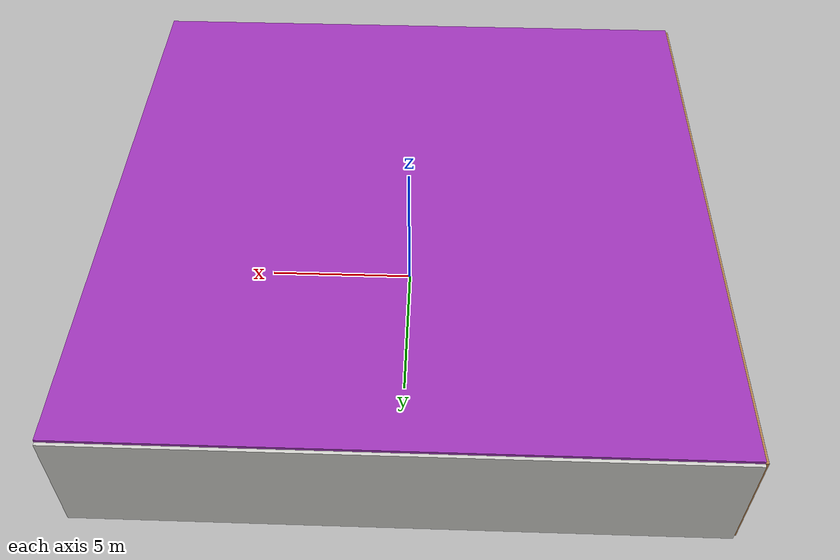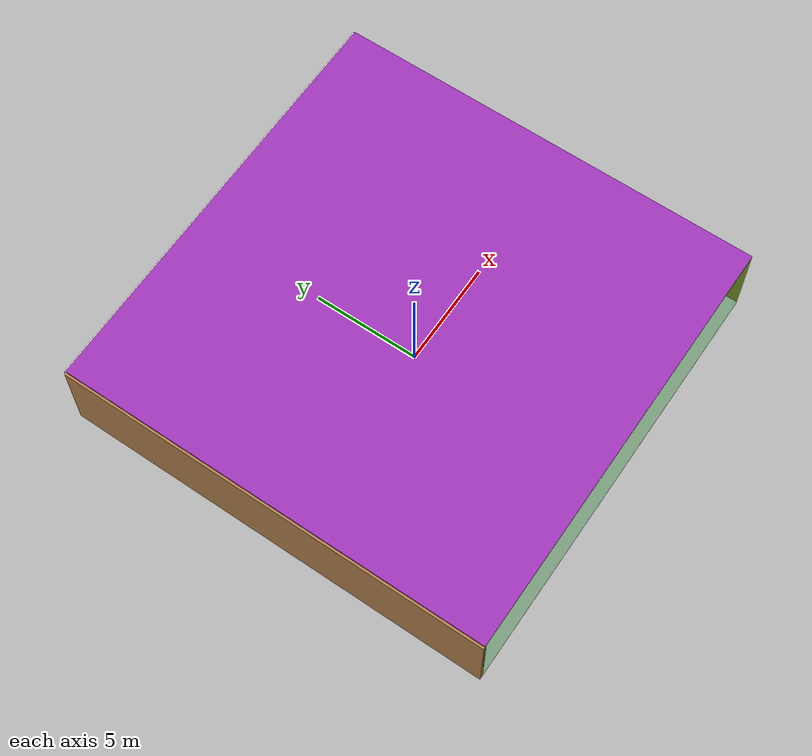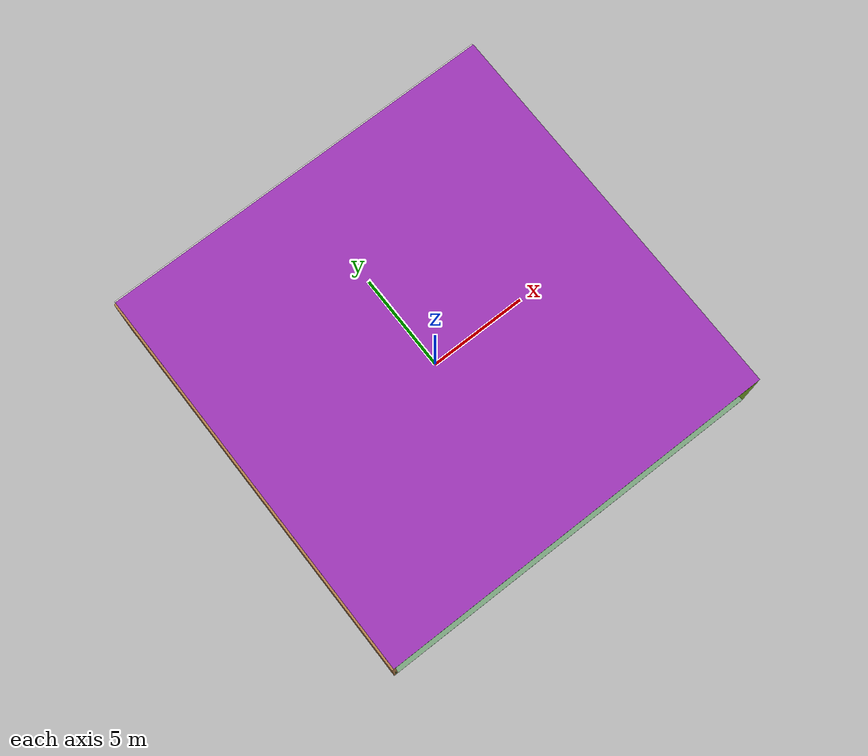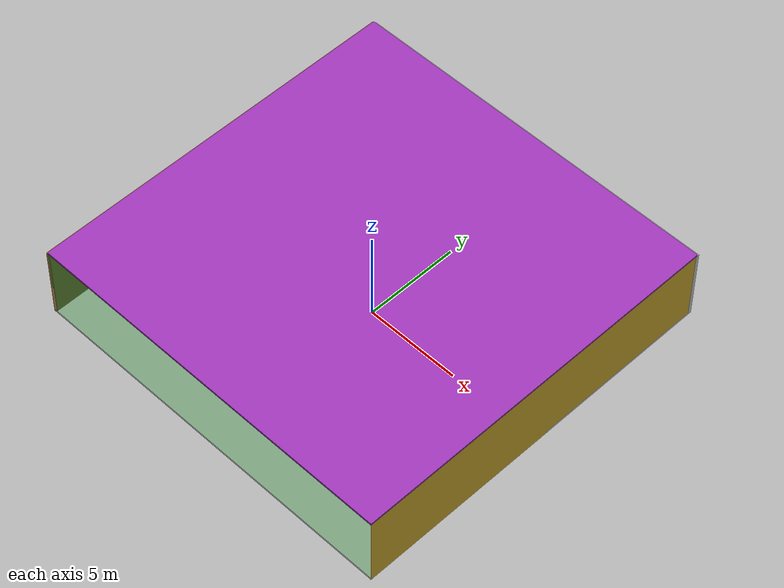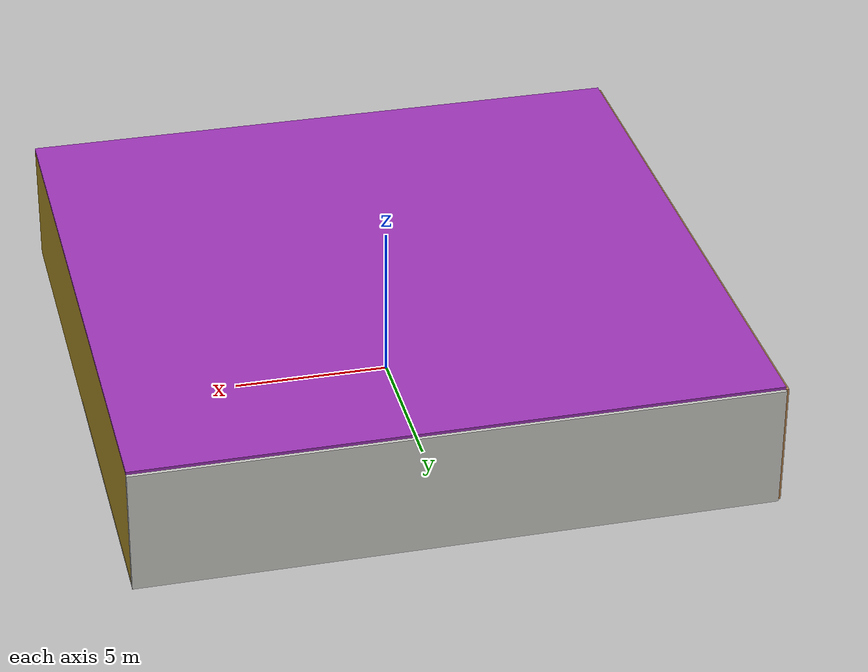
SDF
<sdf version="1.4">
 <world name="default">
  <physics type="ode">
   <max_step_size>0.001</max_step_size>
   <real_time_factor>1</real_time_factor>
   <real_time_update_rate>1000</real_time_update_rate>
   <gravity>0 0 -9.8</gravity>
  </physics>
  <scene><ambient>0.4 0.4 0.4 1</ambient><background>0.7 0.7 0.7 1</background><shadows>1</shadows></scene>
  <model name="Surrounding">
   <static>1</static>
   <link name="Ceiling">
    <collision name="Ceiling_Collision"><geometry><box><size>20 20 0.1</size></box></geometry></collision>
    <visual name="Ceiling_Visual">
     <geometry><box><size>20 20 0.1</size></box></geometry>
     <material>
      <script><uri>file://media/materials/scripts/gazebo.material</uri><name>Gazebo/Purple</name></script>
     </material>
    </visual>
    <pose>0 0 4.05 0 0 0</pose>
   </link>
   <link name="Wall_South">
    <collision name="Wall_South_Collision">
     <geometry><box><size>20 0 4</size></box></geometry>
     <pose>0 0 2 0 -0 0</pose>
    </collision>
    <visual name="Wall_South_Visual">
     <pose>0 0 2 0 -0 0</pose>
     <geometry><box><size>20 0 4</size></box></geometry>
     <material>
      <script><uri>file://media/materials/scripts/gazebo.material</uri><name>Gazebo/GreenTransparent</name></script>
     </material>
    </visual>
    <velocity_decay><linear>0</linear><angular>0</angular></velocity_decay>
    <pose>0 -10 0 0 -0 0</pose>
   </link>
   <link name="Wall_East">
    <collision name="Wall_21_Collision">
     <geometry><box><size>20 0 4</size></box></geometry>
     <pose>0 0 2 0 -0 0</pose>
    </collision>
    <visual name="Wall_21_Visual">
     <pose>0 0 2 0 -0 0</pose>
     <geometry><box><size>20 0 4</size></box></geometry>
     <material>
      <script><uri>file://media/materials/scripts/gazebo.material</uri><name>Gazebo/Gold</name></script>
     </material>
    </visual>
    <velocity_decay><linear>0</linear><angular>0</angular></velocity_decay>
    <pose>10 0 0 0 -0 1.5708</pose>
   </link>
   <link name="Wall_North">
    <collision name="Wall_22_Collision">
     <geometry><box><size>20 0.2 4</size></box></geometry>
     <pose>0 0 2 0 -0 0</pose>
    </collision>
    <visual name="Wall_22_Visual">
     <pose>0 0 2 0 -0 0</pose>
     <geometry><box><size>20 0.2 4</size></box></geometry>
     <material>
      <script><uri>file://media/materials/scripts/gazebo.material</uri><name>Gazebo/CeilingTiled</name></script>
     </material>
    </visual>
    <velocity_decay><linear>0</linear><angular>0</angular></velocity_decay>
    <pose>0 10 0 0 -0 0</pose>
   </link>
   <link name="Wall_West">
    <collision name="Wall_23_Collision">
     <geometry><box><size>20 0.2 4</size></box></geometry>
     <pose>0 0 2 0 -0 0</pose>
    </collision>
    <visual name="Wall_23_Visual">
     <pose>0 0 2 0 -0 0</pose>
     <geometry><box><size>20 0.2 4</size></box></geometry>
     <material>
      <script><uri>file://media/materials/scripts/gazebo.material</uri><name>Gazebo/Wood</name></script>
     </material>
    </visual>
    <velocity_decay><linear>0</linear><angular>0</angular></velocity_decay>
    <pose>-10 0 0 0 0 -1.5708</pose>
   </link>
   <link name="Ground_link">
    <collision name="collision">
     <pose>0 0 .05 0 -0 0</pose>
     <geometry><box><size>20 20 0.1</size></box></geometry>
    </collision>
    <visual name="visual">
     <pose>0 0 .05 0 -0 0</pose>
     <geometry><box><size>20 20 0.1</size></box></geometry>
     <material>
      <script><uri>file://media/materials/scripts/gazebo.material</uri><name>Gazebo/WhiteGlow</name></script>
     </material>
    </visual>
   </link>
   <static>1</static>
  </model>
  <spherical_coordinates>
   <surface_model>EARTH_WGS84</surface_model>
   <latitude_deg>0</latitude_deg>
   <longitude_deg>0</longitude_deg>
   <elevation>0</elevation>
   <heading_deg>0</heading_deg>
  </spherical_coordinates>
  <light name="lightball_0" type="diffuse">
   <diffuse>0.8 0.8 0.8 1</diffuse>
   <specular>0.2 0.2 0.2 1</specular>
   <attenuation>
    <range>100</range>
    <constant>0.7</constant>
    <linear>0.01</linear>
    <quadratic>0.001</quadratic>
   </attenuation>
   <direction>-0.5 0.1 -0.9</direction>
   <pose>2.41184783599 0.992892576916 3.6643544576 0 0 0</pose>
  </light>
  <light name="lightball_1" type="diffuse">
   <diffuse>0.8 0.8 0.8 1</diffuse>
   <specular>0.2 0.2 0.2 1</specular>
   <attenuation>
    <range>100</range>
    <constant>0.7</constant>
    <linear>0.01</linear>
    <quadratic>0.001</quadratic>
   </attenuation>
   <direction>-0.5 0.1 -0.9</direction>
   <pose>0.465027240692 -4.60564965573 2.37099916051 0 0 0</pose>
  </light>
  <include>
   <uri>model://robocup_3Dsim_goal</uri>
   <pose>-7.85961042399 -1.76922368162 0 0 0 2.58531971807</pose>
  </include>
  <include>
   <uri>model://robocup_3Dsim_goal</uri>
   <pose>-8.47212353109 4.95232477367 0 0 0 2.68545666095</pose>
  </include>
  <include>
   <uri>model://textured_shapes</uri>
   <pose>-2.42832670958 6.67105766176 0 0 0 0.467983516217</pose>
  </include>
  <include>
   <uri>model://robocup_3Dsim_goal</uri>
   <pose>8.32881849007 -2.17315282043 0 0 0 1.96539299988</pose>
  </include>
 </world>
</sdf>

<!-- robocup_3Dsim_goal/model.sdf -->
<sdf version="1.5">
  <model name="robocup_3d_goal">
    <static>true</static>
    <link name="left_post">
      <pose>0 1.05 0.45 0 0 0</pose>
      <collision name="collision">
        <geometry>
          <cylinder>
            <radius>0.05</radius>
            <length>0.9</length>
          </cylinder>
        </geometry>
      </collision>
      <visual name="visual">
        <geometry>
          <cylinder>
            <radius>0.05</radius>
            <length>0.9</length>
          </cylinder>
        </geometry>
        <material>
          <script>
            <uri>file://media/materials/scripts/gazebo.material</uri>
            <name>Gazebo/ZincYellow</name>
          </script>
        </material>
      </visual>
    </link>
    <link name="left_support_horiz_lower">
      <pose>0.30 1.05 0.01 0 0 0</pose>
      <collision name="collision">
        <geometry>
          <box>
            <size>0.50 0.02 0.02</size>
          </box>
        </geometry>
      </collision>
      <visual name="visual">
        <geometry>
          <box>
            <size>0.50 0.02 0.02</size>
          </box>
        </geometry>
        <material>
          <script>
            <uri>file://media/materials/scripts/gazebo.material</uri>
            <name>Gazebo/White</name>
          </script>
        </material>
      </visual>
    </link>
    <link name="left_support_horiz_upper">
      <pose>0.30 1.05 0.79 0 0 0</pose>
      <collision name="collision">
        <geometry>
          <box>
            <size>0.50 0.02 0.02</size>
          </box>
        </geometry>
      </collision>
      <visual name="visual">
        <geometry>
          <box>
            <size>0.50 0.02 0.02</size>
          </box>
        </geometry>
        <material>
          <script>
            <uri>file://media/materials/scripts/gazebo.material</uri>
            <name>Gazebo/White</name>
          </script>
        </material>
      </visual>
    </link>
    <link name="left_support_vertical">
      <pose>0.56 1.05 0.4 0 1.5708 0</pose>
      <collision name="collision">
        <geometry>
          <box>
            <size>0.80 0.02 0.02</size>
          </box>
        </geometry>
      </collision>
      <visual name="visual">
        <geometry>
          <box>
            <size>0.80 0.02 0.02</size>
          </box>
        </geometry>
        <material>
          <script>
            <uri>file://media/materials/scripts/gazebo.material</uri>
            <name>Gazebo/White</name>
          </script>
        </material>
      </visual>
    </link>
    <link name="right_support_horiz_lower">
      <pose>0.30 -1.05 0.01 0 0 0</pose>
      <collision name="collision">
        <geometry>
          <box>
            <size>0.50 0.02 0.02</size>
          </box>
        </geometry>
      </collision>
      <visual name="visual">
        <geometry>
          <box>
            <size>0.50 0.02 0.02</size>
          </box>
        </geometry>
        <material>
          <script>
            <uri>file://media/materials/scripts/gazebo.material</uri>
            <name>Gazebo/White</name>
          </script>
        </material>
      </visual>
    </link>
    <link name="right_support_horiz_upper">
      <pose>0.30 -1.05 0.79 0 0 0</pose>
      <collision name="collision">
        <geometry>
          <box>
            <size>0.50 0.02 0.02</size>
          </box>
        </geometry>
      </collision>
      <visual name="visual">
        <geometry>
          <box>
            <size>0.50 0.02 0.02</size>
          </box>
        </geometry>
        <material>
          <script>
            <uri>file://media/materials/scripts/gazebo.material</uri>
            <name>Gazebo/White</name>
          </script>
        </material>
      </visual>
    </link>
    <link name="right_support_vertical">
      <pose>0.56 -1.05 0.4 0 1.5708 0</pose>
      <collision name="collision">
        <geometry>
          <box>
            <size>0.80 0.02 0.02</size>
          </box>
        </geometry>
      </collision>
      <visual name="visual">
        <geometry>
          <box>
            <size>0.80 0.02 0.02</size>
          </box>
        </geometry>
        <material>
          <script>
            <uri>file://media/materials/scripts/gazebo.material</uri>
            <name>Gazebo/White</name>
          </script>
        </material>
      </visual>
    </link>
    <link name="center_support_horiz_lower">
      <pose>0.56 0 0.01 0 1.5708 0</pose>
      <collision name="collision">
        <geometry>
          <box>
            <size>0.02 2.08 0.02</size>
          </box>
        </geometry>
      </collision>
      <visual name="visual">
        <geometry>
          <box>
            <size>0.02 2.08 0.02</size>
          </box>
        </geometry>
        <material>
          <script>
            <uri>file://media/materials/scripts/gazebo.material</uri>
            <name>Gazebo/White</name>
          </script>
        </material>
      </visual>
    </link>
    <link name="center_support_horiz_upper">
      <pose>0.56 0 0.79 0 1.5708 0</pose>
      <collision name="collision">
        <geometry>
          <box>
            <size>0.02 2.08 0.02</size>
          </box>
        </geometry>
      </collision>
      <visual name="visual">
        <geometry>
          <box>
            <size>0.02 2.08 0.02</size>
          </box>
        </geometry>
        <material>
          <script>
            <uri>file://media/materials/scripts/gazebo.material</uri>
            <name>Gazebo/White</name>
          </script>
        </material>
      </visual>
    </link>
    <link name="right_post">
      <pose>0 -1.05 0.45 0 0 0</pose>
      <collision name="collision">
        <geometry>
          <cylinder>
            <radius>0.05</radius>
            <length>0.9</length>
          </cylinder>
        </geometry>
      </collision>
      <visual name="visual">
        <geometry>
          <cylinder>
            <radius>0.05</radius>
            <length>0.9</length>
          </cylinder>
        </geometry>
        <material>
          <script>
            <uri>file://media/materials/scripts/gazebo.material</uri>
            <name>Gazebo/ZincYellow</name>
          </script>
        </material>
      </visual>
    </link>
    <link name="crossbar">
      <pose>0 0 0.85 1.57 1.57 0</pose>
      <collision name="collision">
        <geometry>
          <cylinder>
            <radius>0.05</radius>
            <length>2.0</length>
          </cylinder>
        </geometry>
      </collision>
      <visual name="visual">
        <geometry>
          <cylinder>
            <radius>0.05</radius>
            <length>2.0</length>
          </cylinder>
        </geometry>
        <material>
          <script>
            <uri>file://media/materials/scripts/gazebo.material</uri>
            <name>Gazebo/ZincYellow</name>
          </script>
        </material>
      </visual>
    </link>
    <link name="center_net">
      <pose>0.56 0 0.40 0 0 0</pose>
      <collision name="collision">
        <geometry>
          <box>
            <size>0.01 2.1 0.80</size>
          </box>
        </geometry>
      </collision>
      <visual name="visual">
        <geometry>
          <box>
            <size>0.01 2.1 0.80</size>
          </box>
        </geometry>
        <material>
          <script>
            <uri>model://../model_source/models/robocup09_spl_field/materials/scripts/</uri>
            <uri>model://../model_source/models/robocup09_spl_field/materials/textures/</uri>
            <name>RoboCup/Net</name>
          </script>
        </material>
      </visual>
    </link>
    <link name="left_net">
      <pose>0.30 1.05 0.40 0 0 0</pose>
      <collision name="collision">
        <geometry>
          <box>
            <size>0.50 0.01 0.76</size>
          </box>
        </geometry>
      </collision>
      <visual name="visual">
        <geometry>
          <box>
            <size>0.50 0.01 0.76</size>
          </box>
        </geometry>
        <material>
          <script>
            <uri>model://../model_source/models/robocup09_spl_field/materials/scripts/</uri>
            <uri>model://../model_source/models/robocup09_spl_field/materials/textures/</uri>
            <name>RoboCup/Net</name>
          </script>
        </material>
      </visual>
    </link>
    <link name="right_net">
      <pose>0.30 -1.05 0.40 0 0 0</pose>
      <collision name="collision">
        <geometry>
          <box>
            <size>0.50 0.01 0.76</size>
          </box>
        </geometry>
      </collision>
      <visual name="visual">
        <geometry>
          <box>
            <size>0.50 0.01 0.76</size>
          </box>
        </geometry>
        <material>
          <script>
            <uri>model://../model_source/models/robocup09_spl_field/materials/scripts/</uri>
            <uri>model://../model_source/models/robocup09_spl_field/materials/textures/</uri>
            <name>RoboCup/Net</name>
          </script>
        </material>
      </visual>
    </link>
  </model>
</sdf>

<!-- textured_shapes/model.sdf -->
<sdf version="1.6">
  <model name="textured_shapes">
    <pose>0 0 0.5 0 0 0</pose>
    <link name="box">
      <pose>0 -1.5 0 0 0 0</pose>
      <collision name="collision">
        <geometry>
          <box>
            <size>1 1 1</size>
          </box>
        </geometry>
      </collision>
      <visual name="visual">
        <geometry>
          <box>
            <size>1 1 1</size>
          </box>
        </geometry>
        <material>
          <script>
            <uri>model://../model_source/models/textured_shapes/materials/scripts</uri>
            <uri>model://../model_source/models/textured_shapes/materials/textures</uri>
            <name>TexturedShape/Squares</name>
          </script>
        </material>
      </visual>
    </link>
    <link name="sphere">
      <collision name="collision">
        <geometry>
          <sphere>
            <radius>0.5</radius>
          </sphere>
        </geometry>
      </collision>
      <visual name="visual">
        <geometry>
          <sphere>
            <radius>0.5</radius>
          </sphere>
        </geometry>
        <material>
          <script>
            <uri>model://../model_source/models/textured_shapes/materials/scripts</uri>
            <uri>model://../model_source/models/textured_shapes/materials/textures</uri>
            <name>TexturedShape/Squares</name>
          </script>
        </material>
      </visual>
    </link>
    <link name="cylinder">
      <pose>0 1.5 0 0 0 0</pose>
      <collision name="collision">
        <geometry>
          <cylinder>
            <radius>0.5</radius>
            <length>1</length>
          </cylinder>
        </geometry>
      </collision>
      <visual name="visual">
        <geometry>
          <cylinder>
            <radius>0.5</radius>
            <length>1</length>
          </cylinder>
        </geometry>
        <material>
          <script>
            <uri>model://../model_source/models/textured_shapes/materials/scripts</uri>
            <uri>model://../model_source/models/textured_shapes/materials/textures</uri>
            <name>TexturedShape/Squares</name>
          </script>
        </material>
      </visual>
    </link>
  </model>
</sdf>
